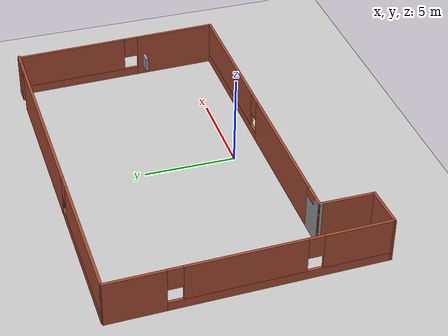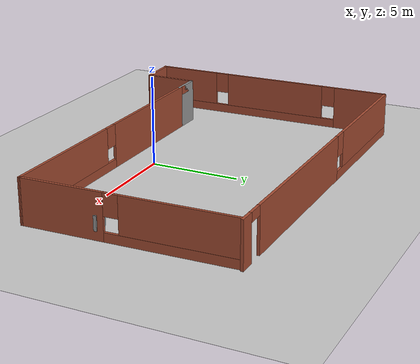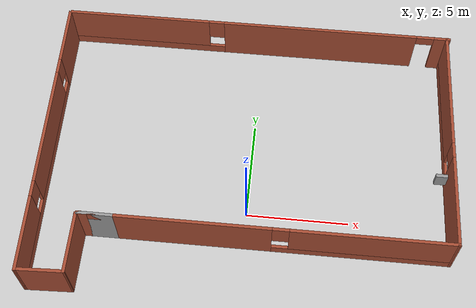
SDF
<sdf version="1.7">
 <world name="default">
  <light name="sun" type="directional">
   <pose>0 0 10 0 -0 0</pose>
   <diffuse>0.8 0.8 0.8 1</diffuse>
   <specular>0.2 0.2 0.2 1</specular>
   <attenuation>
    <range>1000</range>
    <constant>0.9</constant>
    <linear>0.01</linear>
    <quadratic>0.001</quadratic>
   </attenuation>
   <direction>-0.5 0.1 -0.9</direction>
   <spot><inner_angle>0</inner_angle><outer_angle>0</outer_angle><falloff>0</falloff></spot>
  </light>
  <model name="ground_plane">
   <static>1</static>
   <link name="link">
    <collision name="collision">
     <geometry><plane><normal>0 0 1</normal><size>100 100</size></plane></geometry>
     <surface>
      <contact><collide_bitmask>65535</collide_bitmask></contact>
      <friction><ode><mu>100</mu><mu2>50</mu2></ode></friction>
     </surface>
    </collision>
    <visual name="visual">
     <cast_shadows>0</cast_shadows>
     <geometry><plane><normal>0 0 1</normal><size>100 100</size></plane></geometry>
     <material>
      <script><uri>file://media/materials/scripts/gazebo.material</uri><name>Gazebo/Grey</name></script>
     </material>
    </visual>
   </link>
  </model>
  <gravity>0 0 -9.8</gravity>
  <magnetic_field>6e-06 2.3e-05 -4.2e-05</magnetic_field>
  <atmosphere type="adiabatic"/>
  <physics type="ode">
   <max_step_size>0.001</max_step_size>
   <real_time_factor>1</real_time_factor>
   <real_time_update_rate>1000</real_time_update_rate>
  </physics>
  <scene><ambient>0.4 0.4 0.4 1</ambient><background>0.7 0.7 0.7 1</background><shadows>1</shadows></scene>
  <audio><device>default</device></audio>
  <spherical_coordinates>
   <surface_model>EARTH_WGS84</surface_model>
   <latitude_deg>0</latitude_deg>
   <longitude_deg>0</longitude_deg>
   <elevation>0</elevation>
   <heading_deg>0</heading_deg>
  </spherical_coordinates>
  <model name="world_1">
   <pose>-0.215297 2.56191 0 0 -0 0</pose>
   <link name="Wall_0">
    <collision name="Wall_0_Collision">
     <geometry><box><size>3 0.15 2.5</size></box></geometry>
     <pose>0 0 1.25 0 -0 0</pose>
    </collision>
    <visual name="Wall_0_Visual">
     <pose>0 0 1.25 0 -0 0</pose>
     <geometry><box><size>3 0.15 2.5</size></box></geometry>
     <material>
      <script><uri>file://media/materials/scripts/gazebo.material</uri><name>Gazebo/Bricks</name></script>
      <ambient>0.996078 0.47451 0.0196078 1</ambient>
     </material>
     <meta><layer>0</layer></meta>
    </visual>
    <pose>-7.5647 -5.76691 0 0 -0 1.5708</pose>
   </link>
   <link name="Wall_1">
    <collision name="Wall_1_Collision">
     <geometry><box><size>0.15 0.15 2.5</size></box></geometry>
     <pose>0 0 1.25 0 -0 0</pose>
    </collision>
    <visual name="Wall_1_Visual">
     <pose>0 0 1.25 0 -0 0</pose>
     <geometry><box><size>0.15 0.15 2.5</size></box></geometry>
     <material>
      <script><uri>file://media/materials/scripts/gazebo.material</uri><name>Gazebo/Grey</name></script>
      <ambient>1 1 1 1</ambient>
     </material>
     <meta><layer>0</layer></meta>
    </visual>
    <pose>-7.5747 -4.35191 0 0 -0 0</pose>
   </link>
   <link name="Wall_3">
    <collision name="Wall_3_Collision">
     <geometry><box><size>1.75 0.15 2.5</size></box></geometry>
     <pose>0 0 1.25 0 -0 0</pose>
    </collision>
    <visual name="Wall_3_Visual">
     <pose>0 0 1.25 0 -0 0</pose>
     <geometry><box><size>1.75 0.15 2.5</size></box></geometry>
     <material>
      <script><uri>file://media/materials/scripts/gazebo.material</uri><name>Gazebo/Grey</name></script>
      <ambient>1 1 1 1</ambient>
     </material>
     <meta><layer>0</layer></meta>
    </visual>
    <pose>-6.7147 -4.27191 0 0 -0 3.14159</pose>
   </link>
   <link name="Wall_4">
    <pose>1.2853 -4.27191 0 0 -0 0</pose>
    <visual name="Wall_4_Visual_0">
     <pose>-8.60913 0 1.25 0 -0 0</pose>
     <geometry><box><size>0.531738 0.15 2.5</size></box></geometry>
     <material>
      <script><uri>file://media/materials/scripts/gazebo.material</uri><name>Gazebo/Bricks</name></script>
      <ambient>0.996078 0.47451 0.0196078 1</ambient>
     </material>
     <meta><layer>0</layer></meta>
    </visual>
    <collision name="Wall_4_Collision_0">
     <geometry><box><size>0.531738 0.15 2.5</size></box></geometry>
     <pose>-8.60913 0 1.25 0 -0 0</pose>
    </collision>
    <visual name="Wall_4_Visual_1">
     <pose>-3.58806 0 1.25 0 -0 0</pose>
     <geometry><box><size>7.7104 0.15 2.5</size></box></geometry>
     <material>
      <script><uri>file://media/materials/scripts/gazebo.material</uri><name>Gazebo/Bricks</name></script>
      <ambient>0.996078 0.47451 0.0196078 1</ambient>
     </material>
     <meta><layer>0</layer></meta>
    </visual>
    <collision name="Wall_4_Collision_1">
     <geometry><box><size>7.7104 0.15 2.5</size></box></geometry>
     <pose>-3.58806 0 1.25 0 -0 0</pose>
    </collision>
    <visual name="Wall_4_Visual_2">
     <pose>4.57107 0 0.25 0 -0 0</pose>
     <geometry><box><size>8.60786 0.15 0.5</size></box></geometry>
     <material>
      <script><uri>file://media/materials/scripts/gazebo.material</uri><name>Gazebo/Bricks</name></script>
      <ambient>0.996078 0.47451 0.0196078 1</ambient>
     </material>
     <meta><layer>0</layer></meta>
    </visual>
    <collision name="Wall_4_Collision_2">
     <geometry><box><size>8.60786 0.15 0.5</size></box></geometry>
     <pose>4.57107 0 0.25 0 -0 0</pose>
    </collision>
    <visual name="Wall_4_Visual_3">
     <pose>4.97107 0 1.5 0 -0 0</pose>
     <geometry><box><size>7.80786 0.15 2</size></box></geometry>
     <material>
      <script><uri>file://media/materials/scripts/gazebo.material</uri><name>Gazebo/Bricks</name></script>
      <ambient>0.996078 0.47451 0.0196078 1</ambient>
     </material>
     <meta><layer>0</layer></meta>
    </visual>
    <collision name="Wall_4_Collision_3">
     <geometry><box><size>7.80786 0.15 2</size></box></geometry>
     <pose>4.97107 0 1.5 0 -0 0</pose>
    </collision>
    <visual name="Wall_4_Visual_4">
     <pose>0.667138 0 1.9 0 -0 0</pose>
     <geometry><box><size>0.8 0.15 1.2</size></box></geometry>
     <material>
      <script><uri>file://media/materials/scripts/gazebo.material</uri><name>Gazebo/Bricks</name></script>
      <ambient>0.996078 0.47451 0.0196078 1</ambient>
     </material>
     <meta><layer>0</layer></meta>
    </visual>
    <collision name="Wall_4_Collision_4">
     <geometry><box><size>0.8 0.15 1.2</size></box></geometry>
     <pose>0.667138 0 1.9 0 -0 0</pose>
    </collision>
    <visual name="Wall_4_Visual_5">
     <pose>-7.89326 0 2.25 0 -0 0</pose>
     <geometry><box><size>0.9 0.15 0.5</size></box></geometry>
     <material>
      <script><uri>file://media/materials/scripts/gazebo.material</uri><name>Gazebo/Bricks</name></script>
      <ambient>0.996078 0.47451 0.0196078 1</ambient>
     </material>
     <meta><layer>0</layer></meta>
    </visual>
    <collision name="Wall_4_Collision_5">
     <geometry><box><size>0.9 0.15 0.5</size></box></geometry>
     <pose>-7.89326 0 2.25 0 -0 0</pose>
    </collision>
   </link>
   <link name="Wall_5">
    <pose>9.92479 1.47459 0 0 -0 1.59872</pose>
    <visual name="Wall_5_Visual_0">
     <pose>-3.51611 0 1.25 0 -0 0</pose>
     <geometry><box><size>4.61526 0.15 2.5</size></box></geometry>
     <material>
      <script><uri>file://media/materials/scripts/gazebo.material</uri><name>Gazebo/Bricks</name></script>
      <ambient>0.996078 0.47451 0.0196078 1</ambient>
     </material>
     <meta><layer>0</layer></meta>
    </visual>
    <collision name="Wall_5_Collision_0">
     <geometry><box><size>4.61526 0.15 2.5</size></box></geometry>
     <pose>-3.51611 0 1.25 0 -0 0</pose>
    </collision>
    <visual name="Wall_5_Visual_1">
     <pose>2.30763 0 0.25 0 -0 0</pose>
     <geometry><box><size>7.03221 0.15 0.5</size></box></geometry>
     <material>
      <script><uri>file://media/materials/scripts/gazebo.material</uri><name>Gazebo/Bricks</name></script>
      <ambient>0.996078 0.47451 0.0196078 1</ambient>
     </material>
     <meta><layer>0</layer></meta>
    </visual>
    <collision name="Wall_5_Collision_1">
     <geometry><box><size>7.03221 0.15 0.5</size></box></geometry>
     <pose>2.30763 0 0.25 0 -0 0</pose>
    </collision>
    <visual name="Wall_5_Visual_2">
     <pose>2.70763 0 1.5 0 -0 0</pose>
     <geometry><box><size>6.23222 0.15 2</size></box></geometry>
     <material>
      <script><uri>file://media/materials/scripts/gazebo.material</uri><name>Gazebo/Bricks</name></script>
      <ambient>0.996078 0.47451 0.0196078 1</ambient>
     </material>
     <meta><layer>0</layer></meta>
    </visual>
    <collision name="Wall_5_Collision_2">
     <geometry><box><size>6.23222 0.15 2</size></box></geometry>
     <pose>2.70763 0 1.5 0 -0 0</pose>
    </collision>
    <visual name="Wall_5_Visual_3">
     <pose>-0.808476 0 1.9 0 -0 0</pose>
     <geometry><box><size>0.8 0.15 1.2</size></box></geometry>
     <material>
      <script><uri>file://media/materials/scripts/gazebo.material</uri><name>Gazebo/Bricks</name></script>
      <ambient>0.996078 0.47451 0.0196078 1</ambient>
     </material>
     <meta><layer>0</layer></meta>
    </visual>
    <collision name="Wall_5_Collision_3">
     <geometry><box><size>0.8 0.15 1.2</size></box></geometry>
     <pose>-0.808476 0 1.9 0 -0 0</pose>
    </collision>
   </link>
   <link name="Wall_6">
    <pose>-0.053713 7.27459 0 0 -0 3.14159</pose>
    <visual name="Wall_6_Visual_0">
     <pose>-9.57198 0 1.25 0 -0 0</pose>
     <geometry><box><size>0.856039 0.15 2.5</size></box></geometry>
     <material>
      <script><uri>file://media/materials/scripts/gazebo.material</uri><name>Gazebo/Bricks</name></script>
      <ambient>0.996078 0.47451 0.0196078 1</ambient>
     </material>
     <meta><layer>0</layer></meta>
    </visual>
    <collision name="Wall_6_Collision_0">
     <geometry><box><size>0.856039 0.15 2.5</size></box></geometry>
     <pose>-9.57198 0 1.25 0 -0 0</pose>
    </collision>
    <visual name="Wall_6_Visual_1">
     <pose>-3.2117 0 1.25 0 -0 0</pose>
     <geometry><box><size>10.0645 0.15 2.5</size></box></geometry>
     <material>
      <script><uri>file://media/materials/scripts/gazebo.material</uri><name>Gazebo/Bricks</name></script>
      <ambient>0.996078 0.47451 0.0196078 1</ambient>
     </material>
     <meta><layer>0</layer></meta>
    </visual>
    <collision name="Wall_6_Collision_1">
     <geometry><box><size>10.0645 0.15 2.5</size></box></geometry>
     <pose>-3.2117 0 1.25 0 -0 0</pose>
    </collision>
    <visual name="Wall_6_Visual_2">
     <pose>1.82055 0 1.25 0 -0 0</pose>
     <geometry><box><size>0 0.15 2.5</size></box></geometry>
     <material>
      <script><uri>file://media/materials/scripts/gazebo.material</uri><name>Gazebo/Bricks</name></script>
      <ambient>0.996078 0.47451 0.0196078 1</ambient>
     </material>
     <meta><layer>0</layer></meta>
    </visual>
    <collision name="Wall_6_Collision_2">
     <geometry><box><size>0 0.15 2.5</size></box></geometry>
     <pose>1.82055 0 1.25 0 -0 0</pose>
    </collision>
    <visual name="Wall_6_Visual_3">
     <pose>5.91028 0 0.25 0 -0 0</pose>
     <geometry><box><size>8.17945 0.15 0.5</size></box></geometry>
     <material>
      <script><uri>file://media/materials/scripts/gazebo.material</uri><name>Gazebo/Bricks</name></script>
      <ambient>0.996078 0.47451 0.0196078 1</ambient>
     </material>
     <meta><layer>0</layer></meta>
    </visual>
    <collision name="Wall_6_Collision_3">
     <geometry><box><size>8.17945 0.15 0.5</size></box></geometry>
     <pose>5.91028 0 0.25 0 -0 0</pose>
    </collision>
    <visual name="Wall_6_Visual_4">
     <pose>6.31027 0 1.5 0 -0 0</pose>
     <geometry><box><size>7.37945 0.15 2</size></box></geometry>
     <material>
      <script><uri>file://media/materials/scripts/gazebo.material</uri><name>Gazebo/Bricks</name></script>
      <ambient>0.996078 0.47451 0.0196078 1</ambient>
     </material>
     <meta><layer>0</layer></meta>
    </visual>
    <collision name="Wall_6_Collision_4">
     <geometry><box><size>7.37945 0.15 2</size></box></geometry>
     <pose>6.31027 0 1.5 0 -0 0</pose>
    </collision>
    <visual name="Wall_6_Visual_5">
     <pose>1.82055 0 1.9 0 -0 0</pose>
     <geometry><box><size>0 0.15 1.2</size></box></geometry>
     <material>
      <script><uri>file://media/materials/scripts/gazebo.material</uri><name>Gazebo/Bricks</name></script>
      <ambient>0.996078 0.47451 0.0196078 1</ambient>
     </material>
     <meta><layer>0</layer></meta>
    </visual>
    <collision name="Wall_6_Collision_5">
     <geometry><box><size>0 0.15 1.2</size></box></geometry>
     <pose>1.82055 0 1.9 0 -0 0</pose>
    </collision>
    <visual name="Wall_6_Visual_6">
     <pose>2.22055 0 1.9 0 -0 0</pose>
     <geometry><box><size>0.8 0.15 1.2</size></box></geometry>
     <material>
      <script><uri>file://media/materials/scripts/gazebo.material</uri><name>Gazebo/Bricks</name></script>
      <ambient>0.996078 0.47451 0.0196078 1</ambient>
     </material>
     <meta><layer>0</layer></meta>
    </visual>
    <collision name="Wall_6_Collision_6">
     <geometry><box><size>0.8 0.15 1.2</size></box></geometry>
     <pose>2.22055 0 1.9 0 -0 0</pose>
    </collision>
    <visual name="Wall_6_Visual_7">
     <pose>-8.69396 0 2.25 0 -0 0</pose>
     <geometry><box><size>0.9 0.15 0.5</size></box></geometry>
     <material>
      <script><uri>file://media/materials/scripts/gazebo.material</uri><name>Gazebo/Bricks</name></script>
      <ambient>0.996078 0.47451 0.0196078 1</ambient>
     </material>
     <meta><layer>0</layer></meta>
    </visual>
    <collision name="Wall_6_Collision_7">
     <geometry><box><size>0.9 0.15 0.5</size></box></geometry>
     <pose>-8.69396 0 2.25 0 -0 0</pose>
    </collision>
   </link>
   <link name="Wall_7">
    <pose>-9.92521 -0.025413 0 0 -0 -1.54865</pose>
    <visual name="Wall_7_Visual_0">
     <pose>-5.75729 0 1.25 0 -0 0</pose>
     <geometry><box><size>3.13198 0.15 2.5</size></box></geometry>
     <material>
      <script><uri>file://media/materials/scripts/gazebo.material</uri><name>Gazebo/Bricks</name></script>
      <ambient>0.996078 0.47451 0.0196078 1</ambient>
     </material>
     <meta><layer>0</layer></meta>
    </visual>
    <collision name="Wall_7_Collision_0">
     <geometry><box><size>3.13198 0.15 2.5</size></box></geometry>
     <pose>-5.75729 0 1.25 0 -0 0</pose>
    </collision>
    <visual name="Wall_7_Visual_1">
     <pose>1.56599 0 0.25 0 -0 0</pose>
     <geometry><box><size>11.5146 0.15 0.5</size></box></geometry>
     <material>
      <script><uri>file://media/materials/scripts/gazebo.material</uri><name>Gazebo/Bricks</name></script>
      <ambient>0.996078 0.47451 0.0196078 1</ambient>
     </material>
     <meta><layer>0</layer></meta>
    </visual>
    <collision name="Wall_7_Collision_1">
     <geometry><box><size>11.5146 0.15 0.5</size></box></geometry>
     <pose>1.56599 0 0.25 0 -0 0</pose>
    </collision>
    <visual name="Wall_7_Visual_2">
     <pose>-0.283001 0 1.5 0 -0 0</pose>
     <geometry><box><size>6.21659 0.15 2</size></box></geometry>
     <material>
      <script><uri>file://media/materials/scripts/gazebo.material</uri><name>Gazebo/Bricks</name></script>
      <ambient>0.996078 0.47451 0.0196078 1</ambient>
     </material>
     <meta><layer>0</layer></meta>
    </visual>
    <collision name="Wall_7_Collision_2">
     <geometry><box><size>6.21659 0.15 2</size></box></geometry>
     <pose>-0.283001 0 1.5 0 -0 0</pose>
    </collision>
    <visual name="Wall_7_Visual_3">
     <pose>5.47428 0 1.5 0 -0 0</pose>
     <geometry><box><size>3.69798 0.15 2</size></box></geometry>
     <material>
      <script><uri>file://media/materials/scripts/gazebo.material</uri><name>Gazebo/Bricks</name></script>
      <ambient>0.996078 0.47451 0.0196078 1</ambient>
     </material>
     <meta><layer>0</layer></meta>
    </visual>
    <collision name="Wall_7_Collision_3">
     <geometry><box><size>3.69798 0.15 2</size></box></geometry>
     <pose>5.47428 0 1.5 0 -0 0</pose>
    </collision>
    <visual name="Wall_7_Visual_4">
     <pose>-3.79129 0 1.9 0 -0 0</pose>
     <geometry><box><size>0.8 0.15 1.2</size></box></geometry>
     <material>
      <script><uri>file://media/materials/scripts/gazebo.material</uri><name>Gazebo/Bricks</name></script>
      <ambient>0.996078 0.47451 0.0196078 1</ambient>
     </material>
     <meta><layer>0</layer></meta>
    </visual>
    <collision name="Wall_7_Collision_4">
     <geometry><box><size>0.8 0.15 1.2</size></box></geometry>
     <pose>-3.79129 0 1.9 0 -0 0</pose>
    </collision>
    <visual name="Wall_7_Visual_5">
     <pose>3.22529 0 1.9 0 -0 0</pose>
     <geometry><box><size>0.8 0.15 1.2</size></box></geometry>
     <material>
      <script><uri>file://media/materials/scripts/gazebo.material</uri><name>Gazebo/Bricks</name></script>
      <ambient>0.996078 0.47451 0.0196078 1</ambient>
     </material>
     <meta><layer>0</layer></meta>
    </visual>
    <collision name="Wall_7_Collision_5">
     <geometry><box><size>0.8 0.15 1.2</size></box></geometry>
     <pose>3.22529 0 1.9 0 -0 0</pose>
    </collision>
   </link>
   <link name="Wall_8">
    <collision name="Wall_8_Collision">
     <geometry><box><size>2.35145 0.15 2.5</size></box></geometry>
     <pose>0 0 1.25 0 -0 0</pose>
    </collision>
    <visual name="Wall_8_Visual">
     <pose>0 0 1.25 0 -0 0</pose>
     <geometry><box><size>2.35145 0.15 2.5</size></box></geometry>
     <material>
      <script><uri>file://media/materials/scripts/gazebo.material</uri><name>Gazebo/Bricks</name></script>
      <ambient>1 1 1 1</ambient>
     </material>
     <meta><layer>0</layer></meta>
    </visual>
    <pose>-8.6647 -7.23191 0 0 -0 0.036348</pose>
   </link>
   <link name="Window_0">
    <collision name="Window_0_Collision">
     <geometry><box><size>0.8 0.17 0.8</size></box></geometry>
     <pose>0 0 0.4 0 -0 0</pose>
    </collision>
    <visual name="Window_0_Visual">
     <pose>0 0 0.4 0 -0 0</pose>
     <geometry><box><size>0.8 0.17 0.8</size></box></geometry>
     <material>
      <script><uri>file://media/materials/scripts/gazebo.material</uri><name>Gazebo/Grey</name></script>
     </material>
    </visual>
    <pose>9.7103 -0.141239 0.5 0 -0 0</pose>
   </link>
   <static>1</static>
  </model>
  <light name="sun" type="directional">
   <pose>6.75346 8.15634 10 0 -0 0</pose>
   <diffuse>0.8 0.8 0.8 1</diffuse>
   <specular>0.2 0.2 0.2 1</specular>
   <attenuation>
    <range>1000</range>
    <constant>0.9</constant>
    <linear>0.01</linear>
    <quadratic>0.001</quadratic>
   </attenuation>
   <direction>-0.5 0.1 -0.9</direction>
  </light>
 </world>
</sdf>
